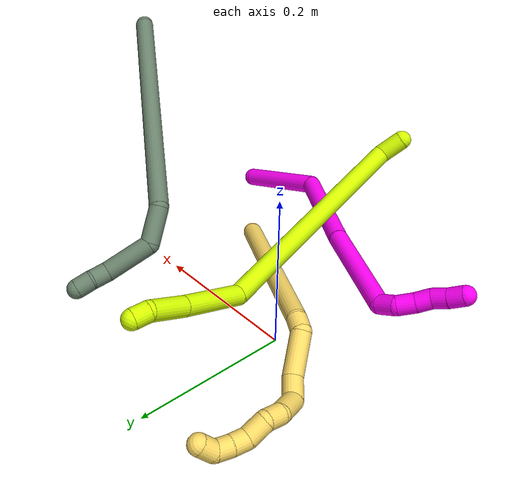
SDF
<sdf version="1.7">
 <world name="default">
  <model name="5">
   <static>0</static>
   <link name="5">
    <collision name="collision-cylinder-e_1_1_4">
     <pose>-0.0809 0.064721 -0.070526 -2.39909 -0.701673 1.50905</pose>
     <geometry><cylinder><radius>0.0125</radius><length>0.250659</length></cylinder></geometry>
     <surface>
      <friction><ode><mu>1.16</mu><mu2>1.16</mu2><slip1>0</slip1><slip2>0</slip2></ode></friction>
      <contact><ode><kp>1e+06</kp><kd>1</kd><max_vel>0</max_vel><min_depth>0.001</min_depth></ode></contact>
     </surface>
    </collision>
    <visual name="visual-cylinder-e_1_1_4">
     <pose>-0.0809 0.064721 -0.070526 -2.39909 -0.701673 1.50905</pose>
     <geometry><cylinder><radius>0.0125</radius><length>0.250659</length></cylinder></geometry>
     <material><ambient>1 0.858824 0.4 1</ambient></material>
    </visual>
    <collision name="collision-cylinder-e_2_4_5">
     <pose>-0.16838 0.136891 -0.144752 -2.03172 -0.669322 1.02242</pose>
     <geometry><cylinder><radius>0.0125</radius><length>0.021212</length></cylinder></geometry>
     <surface>
      <friction><ode><mu>1.16</mu><mu2>1.16</mu2><slip1>0</slip1><slip2>0</slip2></ode></friction>
      <contact><ode><kp>1e+06</kp><kd>1</kd><max_vel>0</max_vel><min_depth>0.001</min_depth></ode></contact>
     </surface>
    </collision>
    <visual name="visual-cylinder-e_2_4_5">
     <pose>-0.16838 0.136891 -0.144752 -2.03172 -0.669322 1.02242</pose>
     <geometry><cylinder><radius>0.0125</radius><length>0.021212</length></cylinder></geometry>
     <material><ambient>1 0.858824 0.4 1</ambient></material>
    </visual>
    <collision name="collision-cylinder-e_3_5_6">
     <pose>-0.19313 0.16231 -0.140202 -1.14039 -0.743183 0.489752</pose>
     <geometry><cylinder><radius>0.0125</radius><length>0.053705</length></cylinder></geometry>
     <surface>
      <friction><ode><mu>1.16</mu><mu2>1.16</mu2><slip1>0</slip1><slip2>0</slip2></ode></friction>
      <contact><ode><kp>1e+06</kp><kd>1</kd><max_vel>0</max_vel><min_depth>0.001</min_depth></ode></contact>
     </surface>
    </collision>
    <visual name="visual-cylinder-e_3_5_6">
     <pose>-0.19313 0.16231 -0.140202 -1.14039 -0.743183 0.489752</pose>
     <geometry><cylinder><radius>0.0125</radius><length>0.053705</length></cylinder></geometry>
     <material><ambient>1 0.858824 0.4 1</ambient></material>
    </visual>
    <collision name="collision-cylinder-e_4_6_7">
     <pose>-0.222192 0.189842 -0.13351 -1.73223 -0.843738 0.971308</pose>
     <geometry><cylinder><radius>0.0125</radius><length>0.029156</length></cylinder></geometry>
     <surface>
      <friction><ode><mu>1.16</mu><mu2>1.16</mu2><slip1>0</slip1><slip2>0</slip2></ode></friction>
      <contact><ode><kp>1e+06</kp><kd>1</kd><max_vel>0</max_vel><min_depth>0.001</min_depth></ode></contact>
     </surface>
    </collision>
    <visual name="visual-cylinder-e_4_6_7">
     <pose>-0.222192 0.189842 -0.13351 -1.73223 -0.843738 0.971308</pose>
     <geometry><cylinder><radius>0.0125</radius><length>0.029156</length></cylinder></geometry>
     <material><ambient>1 0.858824 0.4 1</ambient></material>
    </visual>
    <collision name="collision-cylinder-e_5_7_8">
     <pose>-0.250647 0.199466 -0.141121 -3.13167 -1.23889 3.12768</pose>
     <geometry><cylinder><radius>0.0125</radius><length>0.037155</length></cylinder></geometry>
     <surface>
      <friction><ode><mu>1.16</mu><mu2>1.16</mu2><slip1>0</slip1><slip2>0</slip2></ode></friction>
      <contact><ode><kp>1e+06</kp><kd>1</kd><max_vel>0</max_vel><min_depth>0.001</min_depth></ode></contact>
     </surface>
    </collision>
    <visual name="visual-cylinder-e_5_7_8">
     <pose>-0.250647 0.199466 -0.141121 -3.13167 -1.23889 3.12768</pose>
     <geometry><cylinder><radius>0.0125</radius><length>0.037155</length></cylinder></geometry>
     <material><ambient>1 0.858824 0.4 1</ambient></material>
    </visual>
    <collision name="collision-cylinder-e_6_8_9">
     <pose>-0.278972 0.197308 -0.146864 1.43195 -1.36558 -1.23153</pose>
     <geometry><cylinder><radius>0.0125</radius><length>0.021984</length></cylinder></geometry>
     <surface>
      <friction><ode><mu>1.16</mu><mu2>1.16</mu2><slip1>0</slip1><slip2>0</slip2></ode></friction>
      <contact><ode><kp>1e+06</kp><kd>1</kd><max_vel>0</max_vel><min_depth>0.001</min_depth></ode></contact>
     </surface>
    </collision>
    <visual name="visual-cylinder-e_6_8_9">
     <pose>-0.278972 0.197308 -0.146864 1.43195 -1.36558 -1.23153</pose>
     <geometry><cylinder><radius>0.0125</radius><length>0.021984</length></cylinder></geometry>
     <material><ambient>1 0.858824 0.4 1</ambient></material>
    </visual>
    <collision name="collision-cylinder-e_7_9_10">
     <pose>-0.300466 0.196818 -0.139322 -0.234614 -0.964864 0.123279</pose>
     <geometry><cylinder><radius>0.0125</radius><length>0.026113</length></cylinder></geometry>
     <surface>
      <friction><ode><mu>1.16</mu><mu2>1.16</mu2><slip1>0</slip1><slip2>0</slip2></ode></friction>
      <contact><ode><kp>1e+06</kp><kd>1</kd><max_vel>0</max_vel><min_depth>0.001</min_depth></ode></contact>
     </surface>
    </collision>
    <visual name="visual-cylinder-e_7_9_10">
     <pose>-0.300466 0.196818 -0.139322 -0.234614 -0.964864 0.123279</pose>
     <geometry><cylinder><radius>0.0125</radius><length>0.026113</length></cylinder></geometry>
     <material><ambient>1 0.858824 0.4 1</ambient></material>
    </visual>
    <collision name="collision-cylinder-e_8_10_11">
     <pose>-0.320514 0.196413 -0.129135 0.625399 -1.19795 -0.434436</pose>
     <geometry><cylinder><radius>0.0125</radius><length>0.020008</length></cylinder></geometry>
     <surface>
      <friction><ode><mu>1.16</mu><mu2>1.16</mu2><slip1>0</slip1><slip2>0</slip2></ode></friction>
      <contact><ode><kp>1e+06</kp><kd>1</kd><max_vel>0</max_vel><min_depth>0.001</min_depth></ode></contact>
     </surface>
    </collision>
    <visual name="visual-cylinder-e_8_10_11">
     <pose>-0.320514 0.196413 -0.129135 0.625399 -1.19795 -0.434436</pose>
     <geometry><cylinder><radius>0.0125</radius><length>0.020008</length></cylinder></geometry>
     <material><ambient>1 0.858824 0.4 1</ambient></material>
    </visual>
    <collision name="collision-cylinder-e_9_11_12">
     <pose>-0.339154 0.191181 -0.1243 1.02537 -1.2 -0.735182</pose>
     <geometry><cylinder><radius>0.0125</radius><length>0.020007</length></cylinder></geometry>
     <surface>
      <friction><ode><mu>1.16</mu><mu2>1.16</mu2><slip1>0</slip1><slip2>0</slip2></ode></friction>
      <contact><ode><kp>1e+06</kp><kd>1</kd><max_vel>0</max_vel><min_depth>0.001</min_depth></ode></contact>
     </surface>
    </collision>
    <visual name="visual-cylinder-e_9_11_12">
     <pose>-0.339154 0.191181 -0.1243 1.02537 -1.2 -0.735182</pose>
     <geometry><cylinder><radius>0.0125</radius><length>0.020007</length></cylinder></geometry>
     <material><ambient>1 0.858824 0.4 1</ambient></material>
    </visual>
    <collision name="collision-cylinder-e_10_12_2">
     <pose>-0.354725 0.180388 -0.123748 1.74181 -0.674799 -0.789456</pose>
     <geometry><cylinder><radius>0.0125</radius><length>0.02</length></cylinder></geometry>
     <surface>
      <friction><ode><mu>1.16</mu><mu2>1.16</mu2><slip1>0</slip1><slip2>0</slip2></ode></friction>
      <contact><ode><kp>1e+06</kp><kd>1</kd><max_vel>0</max_vel><min_depth>0.001</min_depth></ode></contact>
     </surface>
    </collision>
    <visual name="visual-cylinder-e_10_12_2">
     <pose>-0.354725 0.180388 -0.123748 1.74181 -0.674799 -0.789456</pose>
     <geometry><cylinder><radius>0.0125</radius><length>0.02</length></cylinder></geometry>
     <material><ambient>1 0.858824 0.4 1</ambient></material>
    </visual>
    <collision name="collision-sphere-2">
     <pose>-0.360973 0.172693 -0.125077 0 -0 0</pose>
     <geometry><sphere><radius>0.0125</radius></sphere></geometry>
     <surface>
      <friction><ode><mu>1.16</mu><mu2>1.16</mu2><slip1>0</slip1><slip2>0</slip2></ode></friction>
      <contact><ode><kp>1e+06</kp><kd>1</kd><max_vel>0</max_vel><min_depth>0.001</min_depth></ode></contact>
     </surface>
    </collision>
    <visual name="visual-sphere-2">
     <pose>-0.360973 0.172693 -0.125077 0 -0 0</pose>
     <geometry><sphere><radius>0.0125</radius></sphere></geometry>
     <material><ambient>1 0.858824 0.4 1</ambient></material>
    </visual>
    <collision name="collision-sphere-12">
     <pose>-0.348478 0.188082 -0.12242 0 -0 0</pose>
     <geometry><sphere><radius>0.0125</radius></sphere></geometry>
     <surface>
      <friction><ode><mu>1.16</mu><mu2>1.16</mu2><slip1>0</slip1><slip2>0</slip2></ode></friction>
      <contact><ode><kp>1e+06</kp><kd>1</kd><max_vel>0</max_vel><min_depth>0.001</min_depth></ode></contact>
     </surface>
    </collision>
    <visual name="visual-sphere-12">
     <pose>-0.348478 0.188082 -0.12242 0 -0 0</pose>
     <geometry><sphere><radius>0.0125</radius></sphere></geometry>
     <material><ambient>1 0.858824 0.4 1</ambient></material>
    </visual>
    <collision name="collision-sphere-11">
     <pose>-0.329831 0.19428 -0.126181 0 -0 0</pose>
     <geometry><sphere><radius>0.0125</radius></sphere></geometry>
     <surface>
      <friction><ode><mu>1.16</mu><mu2>1.16</mu2><slip1>0</slip1><slip2>0</slip2></ode></friction>
      <contact><ode><kp>1e+06</kp><kd>1</kd><max_vel>0</max_vel><min_depth>0.001</min_depth></ode></contact>
     </surface>
    </collision>
    <visual name="visual-sphere-11">
     <pose>-0.329831 0.19428 -0.126181 0 -0 0</pose>
     <geometry><sphere><radius>0.0125</radius></sphere></geometry>
     <material><ambient>1 0.858824 0.4 1</ambient></material>
    </visual>
    <collision name="collision-sphere-10">
     <pose>-0.311198 0.198546 -0.132089 0 -0 0</pose>
     <geometry><sphere><radius>0.0125</radius></sphere></geometry>
     <surface>
      <friction><ode><mu>1.16</mu><mu2>1.16</mu2><slip1>0</slip1><slip2>0</slip2></ode></friction>
      <contact><ode><kp>1e+06</kp><kd>1</kd><max_vel>0</max_vel><min_depth>0.001</min_depth></ode></contact>
     </surface>
    </collision>
    <visual name="visual-sphere-10">
     <pose>-0.311198 0.198546 -0.132089 0 -0 0</pose>
     <geometry><sphere><radius>0.0125</radius></sphere></geometry>
     <material><ambient>1 0.858824 0.4 1</ambient></material>
    </visual>
    <collision name="collision-sphere-9">
     <pose>-0.289734 0.195089 -0.146554 0 -0 0</pose>
     <geometry><sphere><radius>0.0125</radius></sphere></geometry>
     <surface>
      <friction><ode><mu>1.16</mu><mu2>1.16</mu2><slip1>0</slip1><slip2>0</slip2></ode></friction>
      <contact><ode><kp>1e+06</kp><kd>1</kd><max_vel>0</max_vel><min_depth>0.001</min_depth></ode></contact>
     </surface>
    </collision>
    <visual name="visual-sphere-9">
     <pose>-0.289734 0.195089 -0.146554 0 -0 0</pose>
     <geometry><sphere><radius>0.0125</radius></sphere></geometry>
     <material><ambient>1 0.858824 0.4 1</ambient></material>
    </visual>
    <collision name="collision-sphere-4">
     <pose>-0.1618 0.129441 -0.141053 0 -0 0</pose>
     <geometry><sphere><radius>0.0125</radius></sphere></geometry>
     <surface>
      <friction><ode><mu>1.16</mu><mu2>1.16</mu2><slip1>0</slip1><slip2>0</slip2></ode></friction>
      <contact><ode><kp>1e+06</kp><kd>1</kd><max_vel>0</max_vel><min_depth>0.001</min_depth></ode></contact>
     </surface>
    </collision>
    <visual name="visual-sphere-4">
     <pose>-0.1618 0.129441 -0.141053 0 -0 0</pose>
     <geometry><sphere><radius>0.0125</radius></sphere></geometry>
     <material><ambient>1 0.858824 0.4 1</ambient></material>
    </visual>
    <collision name="collision-sphere-1">
     <geometry><sphere><radius>0.0125</radius></sphere></geometry>
     <surface>
      <friction><ode><mu>1.16</mu><mu2>1.16</mu2><slip1>0</slip1><slip2>0</slip2></ode></friction>
      <contact><ode><kp>1e+06</kp><kd>1</kd><max_vel>0</max_vel><min_depth>0.001</min_depth></ode></contact>
     </surface>
    </collision>
    <visual name="visual-sphere-1">
     <geometry><sphere><radius>0.0125</radius></sphere></geometry>
     <material><ambient>1 0.858824 0.4 1</ambient></material>
    </visual>
    <collision name="collision-sphere-8">
     <pose>-0.268211 0.199526 -0.147174 0 -0 0</pose>
     <geometry><sphere><radius>0.0125</radius></sphere></geometry>
     <surface>
      <friction><ode><mu>1.16</mu><mu2>1.16</mu2><slip1>0</slip1><slip2>0</slip2></ode></friction>
      <contact><ode><kp>1e+06</kp><kd>1</kd><max_vel>0</max_vel><min_depth>0.001</min_depth></ode></contact>
     </surface>
    </collision>
    <visual name="visual-sphere-8">
     <pose>-0.268211 0.199526 -0.147174 0 -0 0</pose>
     <geometry><sphere><radius>0.0125</radius></sphere></geometry>
     <material><ambient>1 0.858824 0.4 1</ambient></material>
    </visual>
    <collision name="collision-sphere-5">
     <pose>-0.174961 0.144341 -0.148452 0 -0 0</pose>
     <geometry><sphere><radius>0.0125</radius></sphere></geometry>
     <surface>
      <friction><ode><mu>1.16</mu><mu2>1.16</mu2><slip1>0</slip1><slip2>0</slip2></ode></friction>
      <contact><ode><kp>1e+06</kp><kd>1</kd><max_vel>0</max_vel><min_depth>0.001</min_depth></ode></contact>
     </surface>
    </collision>
    <visual name="visual-sphere-5">
     <pose>-0.174961 0.144341 -0.148452 0 -0 0</pose>
     <geometry><sphere><radius>0.0125</radius></sphere></geometry>
     <material><ambient>1 0.858824 0.4 1</ambient></material>
    </visual>
    <collision name="collision-sphere-6">
     <pose>-0.2113 0.180279 -0.131953 0 -0 0</pose>
     <geometry><sphere><radius>0.0125</radius></sphere></geometry>
     <surface>
      <friction><ode><mu>1.16</mu><mu2>1.16</mu2><slip1>0</slip1><slip2>0</slip2></ode></friction>
      <contact><ode><kp>1e+06</kp><kd>1</kd><max_vel>0</max_vel><min_depth>0.001</min_depth></ode></contact>
     </surface>
    </collision>
    <visual name="visual-sphere-6">
     <pose>-0.2113 0.180279 -0.131953 0 -0 0</pose>
     <geometry><sphere><radius>0.0125</radius></sphere></geometry>
     <material><ambient>1 0.858824 0.4 1</ambient></material>
    </visual>
    <collision name="collision-sphere-7">
     <pose>-0.233083 0.199406 -0.135068 0 -0 0</pose>
     <geometry><sphere><radius>0.0125</radius></sphere></geometry>
     <surface>
      <friction><ode><mu>1.16</mu><mu2>1.16</mu2><slip1>0</slip1><slip2>0</slip2></ode></friction>
      <contact><ode><kp>1e+06</kp><kd>1</kd><max_vel>0</max_vel><min_depth>0.001</min_depth></ode></contact>
     </surface>
    </collision>
    <visual name="visual-sphere-7">
     <pose>-0.233083 0.199406 -0.135068 0 -0 0</pose>
     <geometry><sphere><radius>0.0125</radius></sphere></geometry>
     <material><ambient>1 0.858824 0.4 1</ambient></material>
    </visual>
    <inertial>
     <pose>-0.16857 0.123259 -0.103653 0 -0 0</pose>
     <mass>0.5</mass>
     <inertia>
      <ixx>0.001062</ixx>
      <ixy>0</ixy>
      <ixz>0</ixz>
      <iyy>0.001569</iyy>
      <iyz>0</iyz>
      <izz>0.000176</izz>
     </inertia>
    </inertial>
   </link>
   <pose>0.182374 -0.122796 0.01149 -2.46639 0.085824 -1.38543</pose>
  </model>
  <model name="10">
   <static>0</static>
   <link name="10">
    <collision name="collision-cylinder-e_1_1_4">
     <pose>-0.047042 -0.003662 0.033864 0.10771 -0.9441 -0.05503</pose>
     <geometry><cylinder><radius>0.0125</radius><length>0.116157</length></cylinder></geometry>
     <surface>
      <friction><ode><mu>1.16</mu><mu2>1.16</mu2><slip1>0</slip1><slip2>0</slip2></ode></friction>
      <contact><ode><kp>1e+06</kp><kd>1</kd><max_vel>0</max_vel><min_depth>0.001</min_depth></ode></contact>
     </surface>
    </collision>
    <visual name="visual-cylinder-e_1_1_4">
     <pose>-0.047042 -0.003662 0.033864 0.10771 -0.9441 -0.05503</pose>
     <geometry><cylinder><radius>0.0125</radius><length>0.116157</length></cylinder></geometry>
     <material><ambient>1 0 0.964706 1</ambient></material>
    </visual>
    <collision name="collision-cylinder-e_2_4_5">
     <pose>-0.165564 -0.001696 0.063701 -2.19196 -1.47429 2.11119</pose>
     <geometry><cylinder><radius>0.0125</radius><length>0.143629</length></cylinder></geometry>
     <surface>
      <friction><ode><mu>1.16</mu><mu2>1.16</mu2><slip1>0</slip1><slip2>0</slip2></ode></friction>
      <contact><ode><kp>1e+06</kp><kd>1</kd><max_vel>0</max_vel><min_depth>0.001</min_depth></ode></contact>
     </surface>
    </collision>
    <visual name="visual-cylinder-e_2_4_5">
     <pose>-0.165564 -0.001696 0.063701 -2.19196 -1.47429 2.11119</pose>
     <geometry><cylinder><radius>0.0125</radius><length>0.143629</length></cylinder></geometry>
     <material><ambient>1 0 0.964706 1</ambient></material>
    </visual>
    <collision name="collision-cylinder-e_3_5_6">
     <pose>-0.303311 0.000127 0.058712 1.81848 -1.51165 -1.76072</pose>
     <geometry><cylinder><radius>0.0125</radius><length>0.132766</length></cylinder></geometry>
     <surface>
      <friction><ode><mu>1.16</mu><mu2>1.16</mu2><slip1>0</slip1><slip2>0</slip2></ode></friction>
      <contact><ode><kp>1e+06</kp><kd>1</kd><max_vel>0</max_vel><min_depth>0.001</min_depth></ode></contact>
     </surface>
    </collision>
    <visual name="visual-cylinder-e_3_5_6">
     <pose>-0.303311 0.000127 0.058712 1.81848 -1.51165 -1.76072</pose>
     <geometry><cylinder><radius>0.0125</radius><length>0.132766</length></cylinder></geometry>
     <material><ambient>1 0 0.964706 1</ambient></material>
    </visual>
    <collision name="collision-cylinder-e_4_6_7">
     <pose>-0.378799 -0.00362 0.06589 -0.007033 -0.847592 0.003173</pose>
     <geometry><cylinder><radius>0.0125</radius><length>0.024601</length></cylinder></geometry>
     <surface>
      <friction><ode><mu>1.16</mu><mu2>1.16</mu2><slip1>0</slip1><slip2>0</slip2></ode></friction>
      <contact><ode><kp>1e+06</kp><kd>1</kd><max_vel>0</max_vel><min_depth>0.001</min_depth></ode></contact>
     </surface>
    </collision>
    <visual name="visual-cylinder-e_4_6_7">
     <pose>-0.378799 -0.00362 0.06589 -0.007033 -0.847592 0.003173</pose>
     <geometry><cylinder><radius>0.0125</radius><length>0.024601</length></cylinder></geometry>
     <material><ambient>1 0 0.964706 1</ambient></material>
    </visual>
    <collision name="collision-cylinder-e_5_7_8">
     <pose>-0.39193 -0.006825 0.084194 0.310543 -0.351077 -0.055512</pose>
     <geometry><cylinder><radius>0.0125</radius><length>0.022735</length></cylinder></geometry>
     <surface>
      <friction><ode><mu>1.16</mu><mu2>1.16</mu2><slip1>0</slip1><slip2>0</slip2></ode></friction>
      <contact><ode><kp>1e+06</kp><kd>1</kd><max_vel>0</max_vel><min_depth>0.001</min_depth></ode></contact>
     </surface>
    </collision>
    <visual name="visual-cylinder-e_5_7_8">
     <pose>-0.39193 -0.006825 0.084194 0.310543 -0.351077 -0.055512</pose>
     <geometry><cylinder><radius>0.0125</radius><length>0.022735</length></cylinder></geometry>
     <material><ambient>1 0 0.964706 1</ambient></material>
    </visual>
    <collision name="collision-cylinder-e_6_8_9">
     <pose>-0.399061 -0.011753 0.103723 0.176023 -0.32649 -0.029066</pose>
     <geometry><cylinder><radius>0.0125</radius><length>0.020087</length></cylinder></geometry>
     <surface>
      <friction><ode><mu>1.16</mu><mu2>1.16</mu2><slip1>0</slip1><slip2>0</slip2></ode></friction>
      <contact><ode><kp>1e+06</kp><kd>1</kd><max_vel>0</max_vel><min_depth>0.001</min_depth></ode></contact>
     </surface>
    </collision>
    <visual name="visual-cylinder-e_6_8_9">
     <pose>-0.399061 -0.011753 0.103723 0.176023 -0.32649 -0.029066</pose>
     <geometry><cylinder><radius>0.0125</radius><length>0.020087</length></cylinder></geometry>
     <material><ambient>1 0 0.964706 1</ambient></material>
    </visual>
    <collision name="collision-cylinder-e_7_9_10">
     <pose>-0.408475 -0.014544 0.120875 0.143585 -0.666902 -0.049811</pose>
     <geometry><cylinder><radius>0.0125</radius><length>0.020022</length></cylinder></geometry>
     <surface>
      <friction><ode><mu>1.16</mu><mu2>1.16</mu2><slip1>0</slip1><slip2>0</slip2></ode></friction>
      <contact><ode><kp>1e+06</kp><kd>1</kd><max_vel>0</max_vel><min_depth>0.001</min_depth></ode></contact>
     </surface>
    </collision>
    <visual name="visual-cylinder-e_7_9_10">
     <pose>-0.408475 -0.014544 0.120875 0.143585 -0.666902 -0.049811</pose>
     <geometry><cylinder><radius>0.0125</radius><length>0.020022</length></cylinder></geometry>
     <material><ambient>1 0 0.964706 1</ambient></material>
    </visual>
    <collision name="collision-cylinder-e_8_10_2">
     <pose>-0.420022 -0.016072 0.137097 0.047635 -0.564996 -0.013829</pose>
     <geometry><cylinder><radius>0.0125</radius><length>0.020002</length></cylinder></geometry>
     <surface>
      <friction><ode><mu>1.16</mu><mu2>1.16</mu2><slip1>0</slip1><slip2>0</slip2></ode></friction>
      <contact><ode><kp>1e+06</kp><kd>1</kd><max_vel>0</max_vel><min_depth>0.001</min_depth></ode></contact>
     </surface>
    </collision>
    <visual name="visual-cylinder-e_8_10_2">
     <pose>-0.420022 -0.016072 0.137097 0.047635 -0.564996 -0.013829</pose>
     <geometry><cylinder><radius>0.0125</radius><length>0.020002</length></cylinder></geometry>
     <material><ambient>1 0 0.964706 1</ambient></material>
    </visual>
    <collision name="collision-sphere-2">
     <pose>-0.425377 -0.016474 0.145535 0 -0 0</pose>
     <geometry><sphere><radius>0.0125</radius></sphere></geometry>
     <surface>
      <friction><ode><mu>1.16</mu><mu2>1.16</mu2><slip1>0</slip1><slip2>0</slip2></ode></friction>
      <contact><ode><kp>1e+06</kp><kd>1</kd><max_vel>0</max_vel><min_depth>0.001</min_depth></ode></contact>
     </surface>
    </collision>
    <visual name="visual-sphere-2">
     <pose>-0.425377 -0.016474 0.145535 0 -0 0</pose>
     <geometry><sphere><radius>0.0125</radius></sphere></geometry>
     <material><ambient>1 0 0.964706 1</ambient></material>
    </visual>
    <collision name="collision-sphere-10">
     <pose>-0.414667 -0.01567 0.12866 0 -0 0</pose>
     <geometry><sphere><radius>0.0125</radius></sphere></geometry>
     <surface>
      <friction><ode><mu>1.16</mu><mu2>1.16</mu2><slip1>0</slip1><slip2>0</slip2></ode></friction>
      <contact><ode><kp>1e+06</kp><kd>1</kd><max_vel>0</max_vel><min_depth>0.001</min_depth></ode></contact>
     </surface>
    </collision>
    <visual name="visual-sphere-10">
     <pose>-0.414667 -0.01567 0.12866 0 -0 0</pose>
     <geometry><sphere><radius>0.0125</radius></sphere></geometry>
     <material><ambient>1 0 0.964706 1</ambient></material>
    </visual>
    <collision name="collision-sphere-9">
     <pose>-0.402282 -0.013419 0.11309 0 -0 0</pose>
     <geometry><sphere><radius>0.0125</radius></sphere></geometry>
     <surface>
      <friction><ode><mu>1.16</mu><mu2>1.16</mu2><slip1>0</slip1><slip2>0</slip2></ode></friction>
      <contact><ode><kp>1e+06</kp><kd>1</kd><max_vel>0</max_vel><min_depth>0.001</min_depth></ode></contact>
     </surface>
    </collision>
    <visual name="visual-sphere-9">
     <pose>-0.402282 -0.013419 0.11309 0 -0 0</pose>
     <geometry><sphere><radius>0.0125</radius></sphere></geometry>
     <material><ambient>1 0 0.964706 1</ambient></material>
    </visual>
    <collision name="collision-sphere-4">
     <pose>-0.094083 -0.007323 0.067728 0 -0 0</pose>
     <geometry><sphere><radius>0.0125</radius></sphere></geometry>
     <surface>
      <friction><ode><mu>1.16</mu><mu2>1.16</mu2><slip1>0</slip1><slip2>0</slip2></ode></friction>
      <contact><ode><kp>1e+06</kp><kd>1</kd><max_vel>0</max_vel><min_depth>0.001</min_depth></ode></contact>
     </surface>
    </collision>
    <visual name="visual-sphere-4">
     <pose>-0.094083 -0.007323 0.067728 0 -0 0</pose>
     <geometry><sphere><radius>0.0125</radius></sphere></geometry>
     <material><ambient>1 0 0.964706 1</ambient></material>
    </visual>
    <collision name="collision-sphere-1">
     <geometry><sphere><radius>0.0125</radius></sphere></geometry>
     <surface>
      <friction><ode><mu>1.16</mu><mu2>1.16</mu2><slip1>0</slip1><slip2>0</slip2></ode></friction>
      <contact><ode><kp>1e+06</kp><kd>1</kd><max_vel>0</max_vel><min_depth>0.001</min_depth></ode></contact>
     </surface>
    </collision>
    <visual name="visual-sphere-1">
     <geometry><sphere><radius>0.0125</radius></sphere></geometry>
     <material><ambient>1 0 0.964706 1</ambient></material>
    </visual>
    <collision name="collision-sphere-8">
     <pose>-0.39584 -0.010087 0.094357 0 -0 0</pose>
     <geometry><sphere><radius>0.0125</radius></sphere></geometry>
     <surface>
      <friction><ode><mu>1.16</mu><mu2>1.16</mu2><slip1>0</slip1><slip2>0</slip2></ode></friction>
      <contact><ode><kp>1e+06</kp><kd>1</kd><max_vel>0</max_vel><min_depth>0.001</min_depth></ode></contact>
     </surface>
    </collision>
    <visual name="visual-sphere-8">
     <pose>-0.39584 -0.010087 0.094357 0 -0 0</pose>
     <geometry><sphere><radius>0.0125</radius></sphere></geometry>
     <material><ambient>1 0 0.964706 1</ambient></material>
    </visual>
    <collision name="collision-sphere-5">
     <pose>-0.237044 0.003931 0.059674 0 -0 0</pose>
     <geometry><sphere><radius>0.0125</radius></sphere></geometry>
     <surface>
      <friction><ode><mu>1.16</mu><mu2>1.16</mu2><slip1>0</slip1><slip2>0</slip2></ode></friction>
      <contact><ode><kp>1e+06</kp><kd>1</kd><max_vel>0</max_vel><min_depth>0.001</min_depth></ode></contact>
     </surface>
    </collision>
    <visual name="visual-sphere-5">
     <pose>-0.237044 0.003931 0.059674 0 -0 0</pose>
     <geometry><sphere><radius>0.0125</radius></sphere></geometry>
     <material><ambient>1 0 0.964706 1</ambient></material>
    </visual>
    <collision name="collision-sphere-6">
     <pose>-0.369578 -0.003678 0.05775 0 -0 0</pose>
     <geometry><sphere><radius>0.0125</radius></sphere></geometry>
     <surface>
      <friction><ode><mu>1.16</mu><mu2>1.16</mu2><slip1>0</slip1><slip2>0</slip2></ode></friction>
      <contact><ode><kp>1e+06</kp><kd>1</kd><max_vel>0</max_vel><min_depth>0.001</min_depth></ode></contact>
     </surface>
    </collision>
    <visual name="visual-sphere-6">
     <pose>-0.369578 -0.003678 0.05775 0 -0 0</pose>
     <geometry><sphere><radius>0.0125</radius></sphere></geometry>
     <material><ambient>1 0 0.964706 1</ambient></material>
    </visual>
    <collision name="collision-sphere-7">
     <pose>-0.388021 -0.003563 0.07403 0 -0 0</pose>
     <geometry><sphere><radius>0.0125</radius></sphere></geometry>
     <surface>
      <friction><ode><mu>1.16</mu><mu2>1.16</mu2><slip1>0</slip1><slip2>0</slip2></ode></friction>
      <contact><ode><kp>1e+06</kp><kd>1</kd><max_vel>0</max_vel><min_depth>0.001</min_depth></ode></contact>
     </surface>
    </collision>
    <visual name="visual-sphere-7">
     <pose>-0.388021 -0.003563 0.07403 0 -0 0</pose>
     <geometry><sphere><radius>0.0125</radius></sphere></geometry>
     <material><ambient>1 0 0.964706 1</ambient></material>
    </visual>
    <inertial>
     <pose>-0.224678 -0.00349 0.063318 0 -0 0</pose>
     <mass>0.5</mass>
     <inertia>
      <ixx>4.3e-05</ixx>
      <ixy>0</ixy>
      <ixz>0</ixz>
      <iyy>0.000597</iyy>
      <iyz>0</iyz>
      <izz>0.000578</izz>
     </inertia>
    </inertial>
   </link>
   <pose>0.283493 -0.212999 0.021794 0.959425 -0.009803 -0.437021</pose>
  </model>
  <model name="15">
   <static>0</static>
   <link name="15">
    <collision name="collision-cylinder-e_1_1_4">
     <pose>0.008452 0.002837 -0.014171 -2.94397 0.52917 -2.44006</pose>
     <geometry><cylinder><radius>0.0125</radius><length>0.033484</length></cylinder></geometry>
     <surface>
      <friction><ode><mu>1.16</mu><mu2>1.16</mu2><slip1>0</slip1><slip2>0</slip2></ode></friction>
      <contact><ode><kp>1e+06</kp><kd>1</kd><max_vel>0</max_vel><min_depth>0.001</min_depth></ode></contact>
     </surface>
    </collision>
    <visual name="visual-cylinder-e_1_1_4">
     <pose>0.008452 0.002837 -0.014171 -2.94397 0.52917 -2.44006</pose>
     <geometry><cylinder><radius>0.0125</radius><length>0.033484</length></cylinder></geometry>
     <material><ambient>0.835294 1 0 1</ambient></material>
    </visual>
    <collision name="collision-cylinder-e_2_4_5">
     <pose>-0.005189 0.094962 -0.153379 -2.52148 -0.142812 0.439298</pose>
     <geometry><cylinder><radius>0.0125</radius><length>0.310448</length></cylinder></geometry>
     <surface>
      <friction><ode><mu>1.16</mu><mu2>1.16</mu2><slip1>0</slip1><slip2>0</slip2></ode></friction>
      <contact><ode><kp>1e+06</kp><kd>1</kd><max_vel>0</max_vel><min_depth>0.001</min_depth></ode></contact>
     </surface>
    </collision>
    <visual name="visual-cylinder-e_2_4_5">
     <pose>-0.005189 0.094962 -0.153379 -2.52148 -0.142812 0.439298</pose>
     <geometry><cylinder><radius>0.0125</radius><length>0.310448</length></cylinder></geometry>
     <material><ambient>0.835294 1 0 1</ambient></material>
    </visual>
    <collision name="collision-cylinder-e_3_5_6">
     <pose>-0.030186 0.223033 -0.296082 -1.99821 -0.068029 0.105682</pose>
     <geometry><cylinder><radius>0.0125</radius><length>0.085434</length></cylinder></geometry>
     <surface>
      <friction><ode><mu>1.16</mu><mu2>1.16</mu2><slip1>0</slip1><slip2>0</slip2></ode></friction>
      <contact><ode><kp>1e+06</kp><kd>1</kd><max_vel>0</max_vel><min_depth>0.001</min_depth></ode></contact>
     </surface>
    </collision>
    <visual name="visual-cylinder-e_3_5_6">
     <pose>-0.030186 0.223033 -0.296082 -1.99821 -0.068029 0.105682</pose>
     <geometry><cylinder><radius>0.0125</radius><length>0.085434</length></cylinder></geometry>
     <material><ambient>0.835294 1 0 1</ambient></material>
    </visual>
    <collision name="collision-cylinder-e_4_6_7">
     <pose>-0.03518 0.285067 -0.322506 -1.93105 -0.083969 0.121282</pose>
     <geometry><cylinder><radius>0.0125</radius><length>0.049864</length></cylinder></geometry>
     <surface>
      <friction><ode><mu>1.16</mu><mu2>1.16</mu2><slip1>0</slip1><slip2>0</slip2></ode></friction>
      <contact><ode><kp>1e+06</kp><kd>1</kd><max_vel>0</max_vel><min_depth>0.001</min_depth></ode></contact>
     </surface>
    </collision>
    <visual name="visual-cylinder-e_4_6_7">
     <pose>-0.03518 0.285067 -0.322506 -1.93105 -0.083969 0.121282</pose>
     <geometry><cylinder><radius>0.0125</radius><length>0.049864</length></cylinder></geometry>
     <material><ambient>0.835294 1 0 1</ambient></material>
    </visual>
    <collision name="collision-cylinder-e_5_7_2">
     <pose>-0.035731 0.31539 -0.338709 -2.38175 0.148854 -0.369207</pose>
     <geometry><cylinder><radius>0.0125</radius><length>0.02077</length></cylinder></geometry>
     <surface>
      <friction><ode><mu>1.16</mu><mu2>1.16</mu2><slip1>0</slip1><slip2>0</slip2></ode></friction>
      <contact><ode><kp>1e+06</kp><kd>1</kd><max_vel>0</max_vel><min_depth>0.001</min_depth></ode></contact>
     </surface>
    </collision>
    <visual name="visual-cylinder-e_5_7_2">
     <pose>-0.035731 0.31539 -0.338709 -2.38175 0.148854 -0.369207</pose>
     <geometry><cylinder><radius>0.0125</radius><length>0.02077</length></cylinder></geometry>
     <material><ambient>0.835294 1 0 1</ambient></material>
    </visual>
    <collision name="collision-sphere-2">
     <pose>-0.034191 0.322464 -0.346155 0 -0 0</pose>
     <geometry><sphere><radius>0.0125</radius></sphere></geometry>
     <surface>
      <friction><ode><mu>1.16</mu><mu2>1.16</mu2><slip1>0</slip1><slip2>0</slip2></ode></friction>
      <contact><ode><kp>1e+06</kp><kd>1</kd><max_vel>0</max_vel><min_depth>0.001</min_depth></ode></contact>
     </surface>
    </collision>
    <visual name="visual-sphere-2">
     <pose>-0.034191 0.322464 -0.346155 0 -0 0</pose>
     <geometry><sphere><radius>0.0125</radius></sphere></geometry>
     <material><ambient>0.835294 1 0 1</ambient></material>
    </visual>
    <collision name="collision-sphere-7">
     <pose>-0.037272 0.308316 -0.331264 0 -0 0</pose>
     <geometry><sphere><radius>0.0125</radius></sphere></geometry>
     <surface>
      <friction><ode><mu>1.16</mu><mu2>1.16</mu2><slip1>0</slip1><slip2>0</slip2></ode></friction>
      <contact><ode><kp>1e+06</kp><kd>1</kd><max_vel>0</max_vel><min_depth>0.001</min_depth></ode></contact>
     </surface>
    </collision>
    <visual name="visual-sphere-7">
     <pose>-0.037272 0.308316 -0.331264 0 -0 0</pose>
     <geometry><sphere><radius>0.0125</radius></sphere></geometry>
     <material><ambient>0.835294 1 0 1</ambient></material>
    </visual>
    <collision name="collision-sphere-6">
     <pose>-0.033089 0.261817 -0.313748 0 -0 0</pose>
     <geometry><sphere><radius>0.0125</radius></sphere></geometry>
     <surface>
      <friction><ode><mu>1.16</mu><mu2>1.16</mu2><slip1>0</slip1><slip2>0</slip2></ode></friction>
      <contact><ode><kp>1e+06</kp><kd>1</kd><max_vel>0</max_vel><min_depth>0.001</min_depth></ode></contact>
     </surface>
    </collision>
    <visual name="visual-sphere-6">
     <pose>-0.033089 0.261817 -0.313748 0 -0 0</pose>
     <geometry><sphere><radius>0.0125</radius></sphere></geometry>
     <material><ambient>0.835294 1 0 1</ambient></material>
    </visual>
    <collision name="collision-sphere-5">
     <pose>-0.027282 0.184249 -0.278416 0 -0 0</pose>
     <geometry><sphere><radius>0.0125</radius></sphere></geometry>
     <surface>
      <friction><ode><mu>1.16</mu><mu2>1.16</mu2><slip1>0</slip1><slip2>0</slip2></ode></friction>
      <contact><ode><kp>1e+06</kp><kd>1</kd><max_vel>0</max_vel><min_depth>0.001</min_depth></ode></contact>
     </surface>
    </collision>
    <visual name="visual-sphere-5">
     <pose>-0.027282 0.184249 -0.278416 0 -0 0</pose>
     <geometry><sphere><radius>0.0125</radius></sphere></geometry>
     <material><ambient>0.835294 1 0 1</ambient></material>
    </visual>
    <collision name="collision-sphere-1">
     <geometry><sphere><radius>0.0125</radius></sphere></geometry>
     <surface>
      <friction><ode><mu>1.16</mu><mu2>1.16</mu2><slip1>0</slip1><slip2>0</slip2></ode></friction>
      <contact><ode><kp>1e+06</kp><kd>1</kd><max_vel>0</max_vel><min_depth>0.001</min_depth></ode></contact>
     </surface>
    </collision>
    <visual name="visual-sphere-1">
     <geometry><sphere><radius>0.0125</radius></sphere></geometry>
     <material><ambient>0.835294 1 0 1</ambient></material>
    </visual>
    <collision name="collision-sphere-4">
     <pose>0.016903 0.005675 -0.028341 0 -0 0</pose>
     <geometry><sphere><radius>0.0125</radius></sphere></geometry>
     <surface>
      <friction><ode><mu>1.16</mu><mu2>1.16</mu2><slip1>0</slip1><slip2>0</slip2></ode></friction>
      <contact><ode><kp>1e+06</kp><kd>1</kd><max_vel>0</max_vel><min_depth>0.001</min_depth></ode></contact>
     </surface>
    </collision>
    <visual name="visual-sphere-4">
     <pose>0.016903 0.005675 -0.028341 0 -0 0</pose>
     <geometry><sphere><radius>0.0125</radius></sphere></geometry>
     <material><ambient>0.835294 1 0 1</ambient></material>
    </visual>
    <inertial>
     <pose>-0.012807 0.138791 -0.193005 0 -0 0</pose>
     <mass>0.5</mass>
     <inertia>
      <ixx>0.003366</ixx>
      <ixy>0</ixy>
      <ixz>0</ixz>
      <iyy>-0.000697</iyy>
      <iyz>0</iyz>
      <izz>-0.001173</izz>
     </inertia>
    </inertial>
   </link>
   <pose>0.066889 -0.288571 0.149105 0.731901 0.150857 -0.006244</pose>
  </model>
  <model name="17">
   <static>0</static>
   <link name="17">
    <collision name="collision-cylinder-e_1_1_4">
     <pose>-0.054 -0.00507 -0.165046 3.11088 -0.316066 -2.94946</pose>
     <geometry><cylinder><radius>0.0125</radius><length>0.34746</length></cylinder></geometry>
     <surface>
      <friction><ode><mu>1.16</mu><mu2>1.16</mu2><slip1>0</slip1><slip2>0</slip2></ode></friction>
      <contact><ode><kp>1e+06</kp><kd>1</kd><max_vel>0</max_vel><min_depth>0.001</min_depth></ode></contact>
     </surface>
    </collision>
    <visual name="visual-cylinder-e_1_1_4">
     <pose>-0.054 -0.00507 -0.165046 3.11088 -0.316066 -2.94946</pose>
     <geometry><cylinder><radius>0.0125</radius><length>0.34746</length></cylinder></geometry>
     <material><ambient>0.415686 0.509804 0.423529 1</ambient></material>
    </visual>
    <collision name="collision-cylinder-e_2_4_5">
     <pose>-0.102403 -0.014633 -0.353011 2.94805 0.235227 1.76609</pose>
     <geometry><cylinder><radius>0.0125</radius><length>0.048032</length></cylinder></geometry>
     <surface>
      <friction><ode><mu>1.16</mu><mu2>1.16</mu2><slip1>0</slip1><slip2>0</slip2></ode></friction>
      <contact><ode><kp>1e+06</kp><kd>1</kd><max_vel>0</max_vel><min_depth>0.001</min_depth></ode></contact>
     </surface>
    </collision>
    <visual name="visual-cylinder-e_2_4_5">
     <pose>-0.102403 -0.014633 -0.353011 2.94805 0.235227 1.76609</pose>
     <geometry><cylinder><radius>0.0125</radius><length>0.048032</length></cylinder></geometry>
     <material><ambient>0.415686 0.509804 0.423529 1</ambient></material>
    </visual>
    <collision name="collision-cylinder-e_3_5_6">
     <pose>-0.073905 -0.010993 -0.395072 -2.73989 0.833498 -2.27944</pose>
     <geometry><cylinder><radius>0.0125</radius><length>0.061871</length></cylinder></geometry>
     <surface>
      <friction><ode><mu>1.16</mu><mu2>1.16</mu2><slip1>0</slip1><slip2>0</slip2></ode></friction>
      <contact><ode><kp>1e+06</kp><kd>1</kd><max_vel>0</max_vel><min_depth>0.001</min_depth></ode></contact>
     </surface>
    </collision>
    <visual name="visual-cylinder-e_3_5_6">
     <pose>-0.073905 -0.010993 -0.395072 -2.73989 0.833498 -2.27944</pose>
     <geometry><cylinder><radius>0.0125</radius><length>0.061871</length></cylinder></geometry>
     <material><ambient>0.415686 0.509804 0.423529 1</ambient></material>
    </visual>
    <collision name="collision-cylinder-e_4_6_7">
     <pose>-0.045853 0.003164 -0.421724 -2.46541 0.491241 -1.23879</pose>
     <geometry><cylinder><radius>0.0125</radius><length>0.021839</length></cylinder></geometry>
     <surface>
      <friction><ode><mu>1.16</mu><mu2>1.16</mu2><slip1>0</slip1><slip2>0</slip2></ode></friction>
      <contact><ode><kp>1e+06</kp><kd>1</kd><max_vel>0</max_vel><min_depth>0.001</min_depth></ode></contact>
     </surface>
    </collision>
    <visual name="visual-cylinder-e_4_6_7">
     <pose>-0.045853 0.003164 -0.421724 -2.46541 0.491241 -1.23879</pose>
     <geometry><cylinder><radius>0.0125</radius><length>0.021839</length></cylinder></geometry>
     <material><ambient>0.415686 0.509804 0.423529 1</ambient></material>
    </visual>
    <collision name="collision-cylinder-e_5_7_2">
     <pose>-0.033869 0.01307 -0.436045 -2.62379 0.716873 -1.91081</pose>
     <geometry><cylinder><radius>0.0125</radius><length>0.020798</length></cylinder></geometry>
     <surface>
      <friction><ode><mu>1.16</mu><mu2>1.16</mu2><slip1>0</slip1><slip2>0</slip2></ode></friction>
      <contact><ode><kp>1e+06</kp><kd>1</kd><max_vel>0</max_vel><min_depth>0.001</min_depth></ode></contact>
     </surface>
    </collision>
    <visual name="visual-cylinder-e_5_7_2">
     <pose>-0.033869 0.01307 -0.436045 -2.62379 0.716873 -1.91081</pose>
     <geometry><cylinder><radius>0.0125</radius><length>0.020798</length></cylinder></geometry>
     <material><ambient>0.415686 0.509804 0.423529 1</ambient></material>
    </visual>
    <collision name="collision-sphere-2">
     <pose>-0.027037 0.01695 -0.442857 0 -0 0</pose>
     <geometry><sphere><radius>0.0125</radius></sphere></geometry>
     <surface>
      <friction><ode><mu>1.16</mu><mu2>1.16</mu2><slip1>0</slip1><slip2>0</slip2></ode></friction>
      <contact><ode><kp>1e+06</kp><kd>1</kd><max_vel>0</max_vel><min_depth>0.001</min_depth></ode></contact>
     </surface>
    </collision>
    <visual name="visual-sphere-2">
     <pose>-0.027037 0.01695 -0.442857 0 -0 0</pose>
     <geometry><sphere><radius>0.0125</radius></sphere></geometry>
     <material><ambient>0.415686 0.509804 0.423529 1</ambient></material>
    </visual>
    <collision name="collision-sphere-7">
     <pose>-0.040702 0.00919 -0.429234 0 -0 0</pose>
     <geometry><sphere><radius>0.0125</radius></sphere></geometry>
     <surface>
      <friction><ode><mu>1.16</mu><mu2>1.16</mu2><slip1>0</slip1><slip2>0</slip2></ode></friction>
      <contact><ode><kp>1e+06</kp><kd>1</kd><max_vel>0</max_vel><min_depth>0.001</min_depth></ode></contact>
     </surface>
    </collision>
    <visual name="visual-sphere-7">
     <pose>-0.040702 0.00919 -0.429234 0 -0 0</pose>
     <geometry><sphere><radius>0.0125</radius></sphere></geometry>
     <material><ambient>0.415686 0.509804 0.423529 1</ambient></material>
    </visual>
    <collision name="collision-sphere-6">
     <pose>-0.051004 -0.002861 -0.414214 0 -0 0</pose>
     <geometry><sphere><radius>0.0125</radius></sphere></geometry>
     <surface>
      <friction><ode><mu>1.16</mu><mu2>1.16</mu2><slip1>0</slip1><slip2>0</slip2></ode></friction>
      <contact><ode><kp>1e+06</kp><kd>1</kd><max_vel>0</max_vel><min_depth>0.001</min_depth></ode></contact>
     </surface>
    </collision>
    <visual name="visual-sphere-6">
     <pose>-0.051004 -0.002861 -0.414214 0 -0 0</pose>
     <geometry><sphere><radius>0.0125</radius></sphere></geometry>
     <material><ambient>0.415686 0.509804 0.423529 1</ambient></material>
    </visual>
    <collision name="collision-sphere-5">
     <pose>-0.096806 -0.019125 -0.37593 0 -0 0</pose>
     <geometry><sphere><radius>0.0125</radius></sphere></geometry>
     <surface>
      <friction><ode><mu>1.16</mu><mu2>1.16</mu2><slip1>0</slip1><slip2>0</slip2></ode></friction>
      <contact><ode><kp>1e+06</kp><kd>1</kd><max_vel>0</max_vel><min_depth>0.001</min_depth></ode></contact>
     </surface>
    </collision>
    <visual name="visual-sphere-5">
     <pose>-0.096806 -0.019125 -0.37593 0 -0 0</pose>
     <geometry><sphere><radius>0.0125</radius></sphere></geometry>
     <material><ambient>0.415686 0.509804 0.423529 1</ambient></material>
    </visual>
    <collision name="collision-sphere-1">
     <geometry><sphere><radius>0.0125</radius></sphere></geometry>
     <surface>
      <friction><ode><mu>1.16</mu><mu2>1.16</mu2><slip1>0</slip1><slip2>0</slip2></ode></friction>
      <contact><ode><kp>1e+06</kp><kd>1</kd><max_vel>0</max_vel><min_depth>0.001</min_depth></ode></contact>
     </surface>
    </collision>
    <visual name="visual-sphere-1">
     <geometry><sphere><radius>0.0125</radius></sphere></geometry>
     <material><ambient>0.415686 0.509804 0.423529 1</ambient></material>
    </visual>
    <collision name="collision-sphere-4">
     <pose>-0.108001 -0.010141 -0.330093 0 -0 0</pose>
     <geometry><sphere><radius>0.0125</radius></sphere></geometry>
     <surface>
      <friction><ode><mu>1.16</mu><mu2>1.16</mu2><slip1>0</slip1><slip2>0</slip2></ode></friction>
      <contact><ode><kp>1e+06</kp><kd>1</kd><max_vel>0</max_vel><min_depth>0.001</min_depth></ode></contact>
     </surface>
    </collision>
    <visual name="visual-sphere-4">
     <pose>-0.108001 -0.010141 -0.330093 0 -0 0</pose>
     <geometry><sphere><radius>0.0125</radius></sphere></geometry>
     <material><ambient>0.415686 0.509804 0.423529 1</ambient></material>
    </visual>
    <inertial>
     <pose>-0.05992 -0.005608 -0.234051 0 -0 0</pose>
     <mass>0.5</mass>
     <inertia>
      <ixx>-0.003928</ixx>
      <ixy>0</ixy>
      <ixz>0</ixz>
      <iyy>0.002832</iyy>
      <iyz>0</iyz>
      <izz>0.001132</izz>
     </inertia>
    </inertial>
   </link>
   <pose>0.447206 -0.137512 0.239231 1.00921 0.482617 0.406423</pose>
  </model>
 </world>
</sdf>
